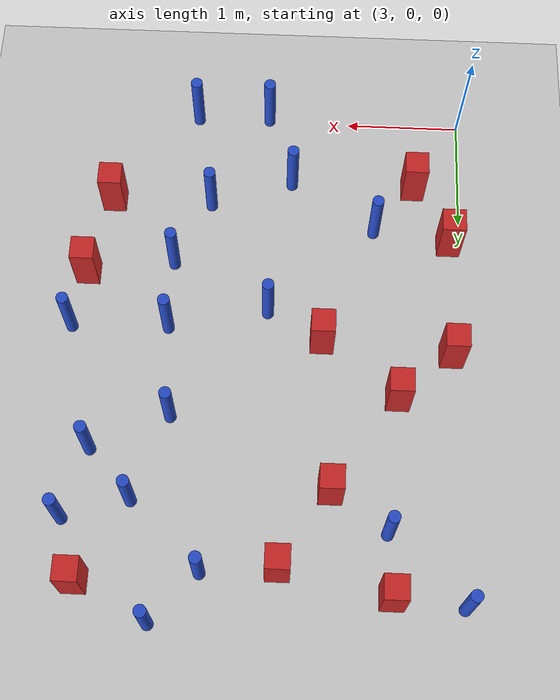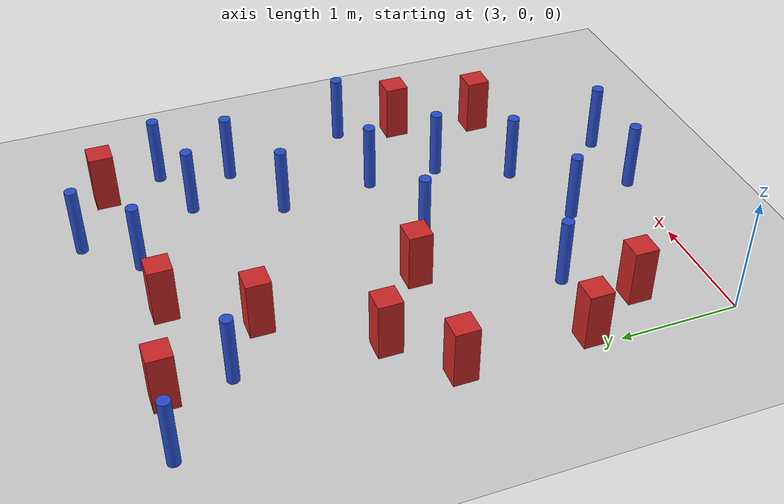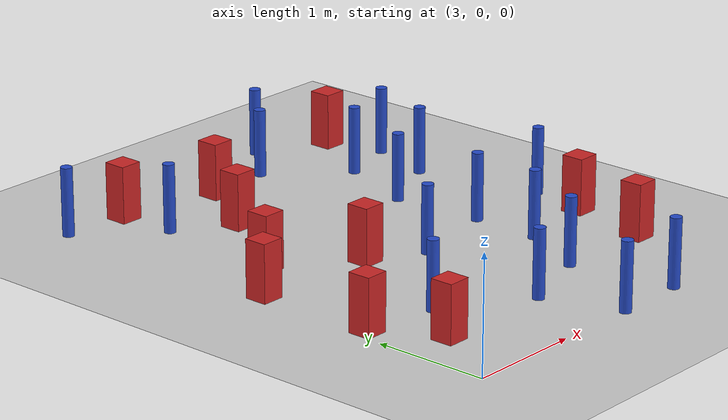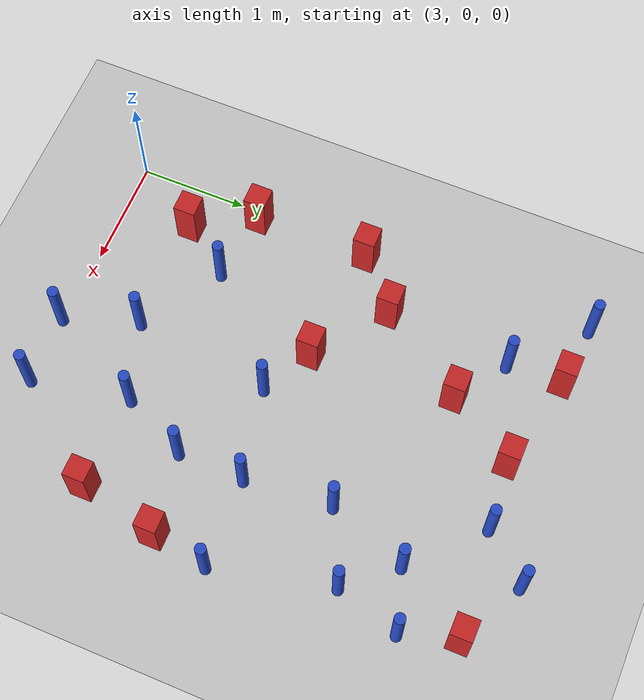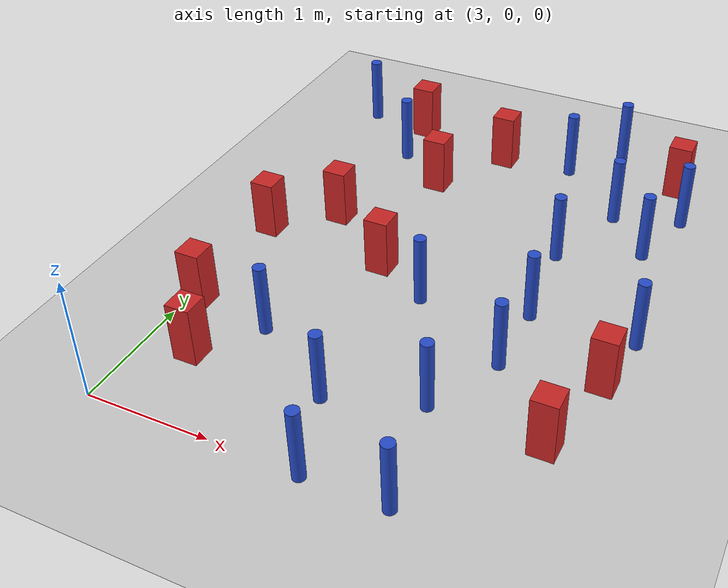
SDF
<sdf version="1.6">
 <world name="default">
  <model name="ground_plane">
   <static>1</static>
   <link name="link">
    <collision name="collision">
     <geometry><plane><normal>0 0 1</normal><size>100 100</size></plane></geometry>
     <surface><friction><ode><mu>100</mu><mu2>50</mu2></ode></friction></surface>
    </collision>
    <visual name="visual">
     <cast_shadows>0</cast_shadows>
     <geometry><plane><normal>0 0 1</normal><size>100 100</size></plane></geometry>
     <material>
      <ambient>1.0 1.0 1.0 1.0</ambient>
      <diffuse>0.8 0.8 0.8 1.0</diffuse>
      <specular>0.01 0.01 0.01 1.000000</specular>
     </material>
    </visual>
   </link>
  </model>
  <model name="pole_obstacle21">
   <static>true</static>
   <pose>5.4323473388 2.91390937879 2.88873142074e-08 -9.90536690245e-09 4.6021994898e-07 -1.20965994966e-07</pose>
   <link name="link">
    <pose>0 0 0.3 0 -0 0</pose>
    <inertial>
     <mass>1</mass>
     <inertia><ixx>0.145833</ixx><ixy>0</ixy><ixz>0</ixz><iyy>0.145833</iyy><iyz>0</iyz><izz>0.125</izz></inertia>
    </inertial>
    <collision name="collision">
     <geometry><cylinder><radius>0.05</radius><length>.6</length></cylinder></geometry>
    </collision>
    <visual name="visual">
     <geometry><cylinder><radius>0.05</radius><length>.6</length></cylinder></geometry>
     <material>
      <script><name>Gazebo/Blue</name><uri>file://media/materials/scripts/gazebo.material</uri></script>
     </material>
    </visual>
   </link>
  </model>
  <model name="pole_obstacle24">
   <static>true</static>
   <pose>5.50613115673 2.10906915194 2.88873142074e-08 -9.90536690245e-09 4.6021994898e-07 -1.20965994966e-07</pose>
   <link name="link">
    <pose>0 0 0.3 0 -0 0</pose>
    <inertial>
     <mass>1</mass>
     <inertia><ixx>0.145833</ixx><ixy>0</ixy><ixz>0</ixz><iyy>0.145833</iyy><iyz>0</iyz><izz>0.125</izz></inertia>
    </inertial>
    <collision name="collision">
     <geometry><cylinder><radius>0.05</radius><length>.6</length></cylinder></geometry>
    </collision>
    <visual name="visual">
     <geometry><cylinder><radius>0.05</radius><length>.6</length></cylinder></geometry>
     <material>
      <script><name>Gazebo/Blue</name><uri>file://media/materials/scripts/gazebo.material</uri></script>
     </material>
    </visual>
   </link>
  </model>
  <model name="square_post_obstacle19">
   <static>true</static>
   <pose>3.08959006721 2.27627172951 8.22691968438e-08 7.2212513382e-06 -7.54495500217e-07 2.29674213826e-05</pose>
   <link name="link">
    <pose>0 0 0.25 0 -0 0</pose>
    <inertial>
     <mass>100</mass>
     <inertia>
      <ixx>0.166667</ixx>
      <ixy>0</ixy>
      <ixz>0</ixz>
      <iyy>0.166667</iyy>
      <iyz>0</iyz>
      <izz>0.166667</izz>
     </inertia>
    </inertial>
    <collision name="collision"><geometry><box><size>.2 .2 .5</size></box></geometry></collision>
    <visual name="visual">
     <geometry><box><size>.2 .2 .5</size></box></geometry>
     <material>
      <script><name>Gazebo/Red</name><uri>file://media/materials/scripts/gazebo.material</uri></script>
     </material>
    </visual>
   </link>
  </model>
  <model name="pole_obstacle29">
   <static>true</static>
   <pose>5.48616518932 4.61730662018 2.88873142074e-08 -9.90536690842e-09 4.60219948965e-07 -1.20965994976e-07</pose>
   <link name="link">
    <pose>0 0 0.3 0 -0 0</pose>
    <inertial>
     <mass>1</mass>
     <inertia><ixx>0.145833</ixx><ixy>0</ixy><ixz>0</ixz><iyy>0.145833</iyy><iyz>0</iyz><izz>0.125</izz></inertia>
    </inertial>
    <collision name="collision">
     <geometry><cylinder><radius>0.05</radius><length>.6</length></cylinder></geometry>
    </collision>
    <visual name="visual">
     <geometry><cylinder><radius>0.05</radius><length>.6</length></cylinder></geometry>
     <material>
      <script><name>Gazebo/Blue</name><uri>file://media/materials/scripts/gazebo.material</uri></script>
     </material>
    </visual>
   </link>
  </model>
  <model name="pole_obstacle41">
   <static>true</static>
   <pose>3.62100782637 3.83456961408 2.88873142074e-08 -9.90536690232e-09 4.6021994898e-07 -1.20965994968e-07</pose>
   <link name="link">
    <pose>0 0 0.3 0 -0 0</pose>
    <inertial>
     <mass>1</mass>
     <inertia><ixx>0.145833</ixx><ixy>0</ixy><ixz>0</ixz><iyy>0.145833</iyy><iyz>0</iyz><izz>0.125</izz></inertia>
    </inertial>
    <collision name="collision">
     <geometry><cylinder><radius>0.05</radius><length>.6</length></cylinder></geometry>
    </collision>
    <visual name="visual">
     <geometry><cylinder><radius>0.05</radius><length>.6</length></cylinder></geometry>
     <material>
      <script><name>Gazebo/Blue</name><uri>file://media/materials/scripts/gazebo.material</uri></script>
     </material>
    </visual>
   </link>
  </model>
  <model name="pole_obstacle68">
   <static>true</static>
   <pose>4.49448221479 0.657118531085 2.88873142074e-08 -9.90536689837e-09 4.60219948989e-07 -1.2096599496e-07</pose>
   <link name="link">
    <pose>0 0 0.3 0 -0 0</pose>
    <inertial>
     <mass>1</mass>
     <inertia><ixx>0.145833</ixx><ixy>0</ixy><ixz>0</ixz><iyy>0.145833</iyy><iyz>0</iyz><izz>0.125</izz></inertia>
    </inertial>
    <collision name="collision">
     <geometry><cylinder><radius>0.05</radius><length>.6</length></cylinder></geometry>
    </collision>
    <visual name="visual">
     <geometry><cylinder><radius>0.05</radius><length>.6</length></cylinder></geometry>
     <material>
      <script><name>Gazebo/Blue</name><uri>file://media/materials/scripts/gazebo.material</uri></script>
     </material>
    </visual>
   </link>
  </model>
  <model name="pole_obstacle69">
   <static>true</static>
   <pose>5.49588521843 1.49594933596 2.88873142074e-08 -9.90536689445e-09 4.60219948999e-07 -1.20965994956e-07</pose>
   <link name="link">
    <pose>0 0 0.3 0 -0 0</pose>
    <inertial>
     <mass>1</mass>
     <inertia><ixx>0.145833</ixx><ixy>0</ixy><ixz>0</ixz><iyy>0.145833</iyy><iyz>0</iyz><izz>0.125</izz></inertia>
    </inertial>
    <collision name="collision">
     <geometry><cylinder><radius>0.05</radius><length>.6</length></cylinder></geometry>
    </collision>
    <visual name="visual">
     <geometry><cylinder><radius>0.05</radius><length>.6</length></cylinder></geometry>
     <material>
      <script><name>Gazebo/Blue</name><uri>file://media/materials/scripts/gazebo.material</uri></script>
     </material>
    </visual>
   </link>
  </model>
  <model name="pole_obstacle72">
   <static>true</static>
   <pose>4.65940416583 1.93553378094 2.88873142074e-08 -9.90536689445e-09 4.60219948999e-07 -1.20965994956e-07</pose>
   <link name="link">
    <pose>0 0 0.3 0 -0 0</pose>
    <inertial>
     <mass>1</mass>
     <inertia><ixx>0.145833</ixx><ixy>0</ixy><ixz>0</ixz><iyy>0.145833</iyy><iyz>0</iyz><izz>0.125</izz></inertia>
    </inertial>
    <collision name="collision">
     <geometry><cylinder><radius>0.05</radius><length>.6</length></cylinder></geometry>
    </collision>
    <visual name="visual">
     <geometry><cylinder><radius>0.05</radius><length>.6</length></cylinder></geometry>
     <material>
      <script><name>Gazebo/Blue</name><uri>file://media/materials/scripts/gazebo.material</uri></script>
     </material>
    </visual>
   </link>
  </model>
  <model name="square_post_obstacle68">
   <static>true</static>
   <pose>3.54445836867 2.68189977755 8.22691968438e-08 7.2212513382e-06 -7.54495500217e-07 2.29674213826e-05</pose>
   <link name="link">
    <pose>0 0 0.25 0 -0 0</pose>
    <inertial>
     <mass>100</mass>
     <inertia>
      <ixx>0.166667</ixx>
      <ixy>0</ixy>
      <ixz>0</ixz>
      <iyy>0.166667</iyy>
      <iyz>0</iyz>
      <izz>0.166667</izz>
     </inertia>
    </inertial>
    <collision name="collision"><geometry><box><size>.2 .2 .5</size></box></geometry></collision>
    <visual name="visual">
     <geometry><box><size>.2 .2 .5</size></box></geometry>
     <material>
      <script><name>Gazebo/Red</name><uri>file://media/materials/scripts/gazebo.material</uri></script>
     </material>
    </visual>
   </link>
  </model>
  <model name="pole_obstacle85">
   <static>true</static>
   <pose>5.37336520467 -0.0040371756682 2.88873142074e-08 -9.90536689125e-09 4.60219949006e-07 -1.20965994951e-07</pose>
   <link name="link">
    <pose>0 0 0.3 0 -0 0</pose>
    <inertial>
     <mass>1</mass>
     <inertia><ixx>0.145833</ixx><ixy>0</ixy><ixz>0</ixz><iyy>0.145833</iyy><iyz>0</iyz><izz>0.125</izz></inertia>
    </inertial>
    <collision name="collision">
     <geometry><cylinder><radius>0.05</radius><length>.6</length></cylinder></geometry>
    </collision>
    <visual name="visual">
     <geometry><cylinder><radius>0.05</radius><length>.6</length></cylinder></geometry>
     <material>
      <script><name>Gazebo/Blue</name><uri>file://media/materials/scripts/gazebo.material</uri></script>
     </material>
    </visual>
   </link>
  </model>
  <model name="square_post_obstacle73">
   <static>true</static>
   <pose>4.49235609507 4.14879047352 8.22691968438e-08 7.2212513382e-06 -7.54495500217e-07 2.29674213826e-05</pose>
   <link name="link">
    <pose>0 0 0.25 0 -0 0</pose>
    <inertial>
     <mass>100</mass>
     <inertia>
      <ixx>0.166667</ixx>
      <ixy>0</ixy>
      <ixz>0</ixz>
      <iyy>0.166667</iyy>
      <iyz>0</iyz>
      <izz>0.166667</izz>
     </inertia>
    </inertial>
    <collision name="collision"><geometry><box><size>.2 .2 .5</size></box></geometry></collision>
    <visual name="visual">
     <geometry><box><size>.2 .2 .5</size></box></geometry>
     <material>
      <script><name>Gazebo/Red</name><uri>file://media/materials/scripts/gazebo.material</uri></script>
     </material>
    </visual>
   </link>
  </model>
  <model name="square_post_obstacle74">
   <static>true</static>
   <pose>3.5902777816 4.34128332955 8.22691968438e-08 7.2212513382e-06 -7.54495500217e-07 2.29674213826e-05</pose>
   <link name="link">
    <pose>0 0 0.25 0 -0 0</pose>
    <inertial>
     <mass>100</mass>
     <inertia>
      <ixx>0.166667</ixx>
      <ixy>0</ixy>
      <ixz>0</ixz>
      <iyy>0.166667</iyy>
      <iyz>0</iyz>
      <izz>0.166667</izz>
     </inertia>
    </inertial>
    <collision name="collision"><geometry><box><size>.2 .2 .5</size></box></geometry></collision>
    <visual name="visual">
     <geometry><box><size>.2 .2 .5</size></box></geometry>
     <material>
      <script><name>Gazebo/Red</name><uri>file://media/materials/scripts/gazebo.material</uri></script>
     </material>
    </visual>
   </link>
  </model>
  <model name="square_post_obstacle76">
   <static>true</static>
   <pose>6.08599478966 4.30738144883 8.22691968438e-08 7.2212513382e-06 -7.54495500217e-07 2.29674213826e-05</pose>
   <link name="link">
    <pose>0 0 0.25 0 -0 0</pose>
    <inertial>
     <mass>100</mass>
     <inertia>
      <ixx>0.166667</ixx>
      <ixy>0</ixy>
      <ixz>0</ixz>
      <iyy>0.166667</iyy>
      <iyz>0</iyz>
      <izz>0.166667</izz>
     </inertia>
    </inertial>
    <collision name="collision"><geometry><box><size>.2 .2 .5</size></box></geometry></collision>
    <visual name="visual">
     <geometry><box><size>.2 .2 .5</size></box></geometry>
     <material>
      <script><name>Gazebo/Red</name><uri>file://media/materials/scripts/gazebo.material</uri></script>
     </material>
    </visual>
   </link>
  </model>
  <model name="square_post_obstacle78">
   <static>true</static>
   <pose>3.41412352791 0.66582962304 8.22691968438e-08 7.2212513382e-06 -7.54495500217e-07 2.29674213826e-05</pose>
   <link name="link">
    <pose>0 0 0.25 0 -0 0</pose>
    <inertial>
     <mass>100</mass>
     <inertia>
      <ixx>0.166667</ixx>
      <ixy>0</ixy>
      <ixz>0</ixz>
      <iyy>0.166667</iyy>
      <iyz>0</iyz>
      <izz>0.166667</izz>
     </inertia>
    </inertial>
    <collision name="collision"><geometry><box><size>.2 .2 .5</size></box></geometry></collision>
    <visual name="visual">
     <geometry><box><size>.2 .2 .5</size></box></geometry>
     <material>
      <script><name>Gazebo/Red</name><uri>file://media/materials/scripts/gazebo.material</uri></script>
     </material>
    </visual>
   </link>
  </model>
  <model name="pole_obstacle116">
   <static>true</static>
   <pose>5.10788813895 4.206130297 2.88873142074e-08 -9.90536690842e-09 4.60219948965e-07 -1.20965994976e-07</pose>
   <link name="link">
    <pose>0 0 0.3 0 -0 0</pose>
    <inertial>
     <mass>1</mass>
     <inertia><ixx>0.145833</ixx><ixy>0</ixy><ixz>0</ixz><iyy>0.145833</iyy><iyz>0</iyz><izz>0.125</izz></inertia>
    </inertial>
    <collision name="collision">
     <geometry><cylinder><radius>0.05</radius><length>.6</length></cylinder></geometry>
    </collision>
    <visual name="visual">
     <geometry><cylinder><radius>0.05</radius><length>.6</length></cylinder></geometry>
     <material>
      <script><name>Gazebo/Blue</name><uri>file://media/materials/scripts/gazebo.material</uri></script>
     </material>
    </visual>
   </link>
  </model>
  <model name="square_post_obstacle127">
   <static>true</static>
   <pose>6.23954122205 1.61253664526 8.22691968438e-08 7.2212513382e-06 -7.54495500217e-07 2.29674213826e-05</pose>
   <link name="link">
    <pose>0 0 0.25 0 -0 0</pose>
    <inertial>
     <mass>100</mass>
     <inertia>
      <ixx>0.166667</ixx>
      <ixy>0</ixy>
      <ixz>0</ixz>
      <iyy>0.166667</iyy>
      <iyz>0</iyz>
      <izz>0.166667</izz>
     </inertia>
    </inertial>
    <collision name="collision"><geometry><box><size>.2 .2 .5</size></box></geometry></collision>
    <visual name="visual">
     <geometry><box><size>.2 .2 .5</size></box></geometry>
     <material>
      <script><name>Gazebo/Red</name><uri>file://media/materials/scripts/gazebo.material</uri></script>
     </material>
    </visual>
   </link>
  </model>
  <model name="pole_obstacle135">
   <static>true</static>
   <pose>4.72465610695 -0.0166406421167 2.88873142074e-08 -9.90536690014e-09 4.60219948985e-07 -1.20965994965e-07</pose>
   <link name="link">
    <pose>0 0 0.3 0 -0 0</pose>
    <inertial>
     <mass>1</mass>
     <inertia><ixx>0.145833</ixx><ixy>0</ixy><ixz>0</ixz><iyy>0.145833</iyy><iyz>0</iyz><izz>0.125</izz></inertia>
    </inertial>
    <collision name="collision">
     <geometry><cylinder><radius>0.05</radius><length>.6</length></cylinder></geometry>
    </collision>
    <visual name="visual">
     <geometry><cylinder><radius>0.05</radius><length>.6</length></cylinder></geometry>
     <material>
      <script><name>Gazebo/Blue</name><uri>file://media/materials/scripts/gazebo.material</uri></script>
     </material>
    </visual>
   </link>
  </model>
  <model name="pole_obstacle146">
   <static>true</static>
   <pose>6.3348643279 2.12744997515 2.88873142074e-08 -9.90536690245e-09 4.6021994898e-07 -1.20965994966e-07</pose>
   <link name="link">
    <pose>0 0 0.3 0 -0 0</pose>
    <inertial>
     <mass>1</mass>
     <inertia><ixx>0.145833</ixx><ixy>0</ixy><ixz>0</ixz><iyy>0.145833</iyy><iyz>0</iyz><izz>0.125</izz></inertia>
    </inertial>
    <collision name="collision">
     <geometry><cylinder><radius>0.05</radius><length>.6</length></cylinder></geometry>
    </collision>
    <visual name="visual">
     <geometry><cylinder><radius>0.05</radius><length>.6</length></cylinder></geometry>
     <material>
      <script><name>Gazebo/Blue</name><uri>file://media/materials/scripts/gazebo.material</uri></script>
     </material>
    </visual>
   </link>
  </model>
  <model name="square_post_obstacle141">
   <static>true</static>
   <pose>4.09012657928 3.50755656646 8.22691968438e-08 7.2212513382e-06 -7.54495500217e-07 2.29674213826e-05</pose>
   <link name="link">
    <pose>0 0 0.25 0 -0 0</pose>
    <inertial>
     <mass>100</mass>
     <inertia>
      <ixx>0.166667</ixx>
      <ixy>0</ixy>
      <ixz>0</ixz>
      <iyy>0.166667</iyy>
      <iyz>0</iyz>
      <izz>0.166667</izz>
     </inertia>
    </inertial>
    <collision name="collision"><geometry><box><size>.2 .2 .5</size></box></geometry></collision>
    <visual name="visual">
     <geometry><box><size>.2 .2 .5</size></box></geometry>
     <material>
      <script><name>Gazebo/Red</name><uri>file://media/materials/scripts/gazebo.material</uri></script>
     </material>
    </visual>
   </link>
  </model>
  <model name="pole_obstacle153">
   <static>true</static>
   <pose>5.2049662826 0.899762231958 2.88873142074e-08 -9.90536689837e-09 4.60219948989e-07 -1.2096599496e-07</pose>
   <link name="link">
    <pose>0 0 0.3 0 -0 0</pose>
    <inertial>
     <mass>1</mass>
     <inertia><ixx>0.145833</ixx><ixy>0</ixy><ixz>0</ixz><iyy>0.145833</iyy><iyz>0</iyz><izz>0.125</izz></inertia>
    </inertial>
    <collision name="collision">
     <geometry><cylinder><radius>0.05</radius><length>.6</length></cylinder></geometry>
    </collision>
    <visual name="visual">
     <geometry><cylinder><radius>0.05</radius><length>.6</length></cylinder></geometry>
     <material>
      <script><name>Gazebo/Blue</name><uri>file://media/materials/scripts/gazebo.material</uri></script>
     </material>
    </visual>
   </link>
  </model>
  <model name="pole_obstacle156">
   <static>true</static>
   <pose>6.07250073608 3.22166313513 2.88873142074e-08 -9.90536690245e-09 4.6021994898e-07 -1.20965994966e-07</pose>
   <link name="link">
    <pose>0 0 0.3 0 -0 0</pose>
    <inertial>
     <mass>1</mass>
     <inertia><ixx>0.145833</ixx><ixy>0</ixy><ixz>0</ixz><iyy>0.145833</iyy><iyz>0</iyz><izz>0.125</izz></inertia>
    </inertial>
    <collision name="collision">
     <geometry><cylinder><radius>0.05</radius><length>.6</length></cylinder></geometry>
    </collision>
    <visual name="visual">
     <geometry><cylinder><radius>0.05</radius><length>.6</length></cylinder></geometry>
     <material>
      <script><name>Gazebo/Blue</name><uri>file://media/materials/scripts/gazebo.material</uri></script>
     </material>
    </visual>
   </link>
  </model>
  <model name="square_post_obstacle165">
   <static>true</static>
   <pose>6.0728443036 0.881981803012 8.22691968438e-08 7.2212513382e-06 -7.54495500217e-07 2.29674213826e-05</pose>
   <link name="link">
    <pose>0 0 0.25 0 -0 0</pose>
    <inertial>
     <mass>100</mass>
     <inertia>
      <ixx>0.166667</ixx>
      <ixy>0</ixy>
      <ixz>0</ixz>
      <iyy>0.166667</iyy>
      <iyz>0</iyz>
      <izz>0.166667</izz>
     </inertia>
    </inertial>
    <collision name="collision"><geometry><box><size>.2 .2 .5</size></box></geometry></collision>
    <visual name="visual">
     <geometry><box><size>.2 .2 .5</size></box></geometry>
     <material>
      <script><name>Gazebo/Red</name><uri>file://media/materials/scripts/gazebo.material</uri></script>
     </material>
    </visual>
   </link>
  </model>
  <model name="square_post_obstacle170">
   <static>true</static>
   <pose>3.10186064378 1.21540554711 8.22691968438e-08 7.2212513382e-06 -7.54495500217e-07 2.29674213826e-05</pose>
   <link name="link">
    <pose>0 0 0.25 0 -0 0</pose>
    <inertial>
     <mass>100</mass>
     <inertia>
      <ixx>0.166667</ixx>
      <ixy>0</ixy>
      <ixz>0</ixz>
      <iyy>0.166667</iyy>
      <iyz>0</iyz>
      <izz>0.166667</izz>
     </inertia>
    </inertial>
    <collision name="collision"><geometry><box><size>.2 .2 .5</size></box></geometry></collision>
    <visual name="visual">
     <geometry><box><size>.2 .2 .5</size></box></geometry>
     <material>
      <script><name>Gazebo/Red</name><uri>file://media/materials/scripts/gazebo.material</uri></script>
     </material>
    </visual>
   </link>
  </model>
  <model name="pole_obstacle171">
   <static>true</static>
   <pose>6.24675373381 3.81047623465 2.88873142074e-08 -9.90536690245e-09 4.6021994898e-07 -1.20965994966e-07</pose>
   <link name="link">
    <pose>0 0 0.3 0 -0 0</pose>
    <inertial>
     <mass>1</mass>
     <inertia><ixx>0.145833</ixx><ixy>0</ixy><ixz>0</ixz><iyy>0.145833</iyy><iyz>0</iyz><izz>0.125</izz></inertia>
    </inertial>
    <collision name="collision">
     <geometry><cylinder><radius>0.05</radius><length>.6</length></cylinder></geometry>
    </collision>
    <visual name="visual">
     <geometry><cylinder><radius>0.05</radius><length>.6</length></cylinder></geometry>
     <material>
      <script><name>Gazebo/Blue</name><uri>file://media/materials/scripts/gazebo.material</uri></script>
     </material>
    </visual>
   </link>
  </model>
  <model name="pole_obstacle173">
   <static>true</static>
   <pose>3.7587447854 1.11830711416 2.88873142074e-08 -9.90536689395e-09 4.60219949e-07 -1.20965994953e-07</pose>
   <link name="link">
    <pose>0 0 0.3 0 -0 0</pose>
    <inertial>
     <mass>1</mass>
     <inertia><ixx>0.145833</ixx><ixy>0</ixy><ixz>0</ixz><iyy>0.145833</iyy><iyz>0</iyz><izz>0.125</izz></inertia>
    </inertial>
    <collision name="collision">
     <geometry><cylinder><radius>0.05</radius><length>.6</length></cylinder></geometry>
    </collision>
    <visual name="visual">
     <geometry><cylinder><radius>0.05</radius><length>.6</length></cylinder></geometry>
     <material>
      <script><name>Gazebo/Blue</name><uri>file://media/materials/scripts/gazebo.material</uri></script>
     </material>
    </visual>
   </link>
  </model>
  <model name="pole_obstacle180">
   <static>true</static>
   <pose>3.0128306097 4.40417158484 2.88873142074e-08 -9.90536689859e-09 4.60219948989e-07 -1.20965994961e-07</pose>
   <link name="link">
    <pose>0 0 0.3 0 -0 0</pose>
    <inertial>
     <mass>1</mass>
     <inertia><ixx>0.145833</ixx><ixy>0</ixy><ixz>0</ixz><iyy>0.145833</iyy><iyz>0</iyz><izz>0.125</izz></inertia>
    </inertial>
    <collision name="collision">
     <geometry><cylinder><radius>0.05</radius><length>.6</length></cylinder></geometry>
    </collision>
    <visual name="visual">
     <geometry><cylinder><radius>0.05</radius><length>.6</length></cylinder></geometry>
     <material>
      <script><name>Gazebo/Blue</name><uri>file://media/materials/scripts/gazebo.material</uri></script>
     </material>
    </visual>
   </link>
  </model>
  <model name="pole_obstacle186">
   <static>true</static>
   <pose>5.70025757428 3.64272264284 2.88873142074e-08 -9.90536690245e-09 4.6021994898e-07 -1.20965994966e-07</pose>
   <link name="link">
    <pose>0 0 0.3 0 -0 0</pose>
    <inertial>
     <mass>1</mass>
     <inertia><ixx>0.145833</ixx><ixy>0</ixy><ixz>0</ixz><iyy>0.145833</iyy><iyz>0</iyz><izz>0.125</izz></inertia>
    </inertial>
    <collision name="collision">
     <geometry><cylinder><radius>0.05</radius><length>.6</length></cylinder></geometry>
    </collision>
    <visual name="visual">
     <geometry><cylinder><radius>0.05</radius><length>.6</length></cylinder></geometry>
     <material>
      <script><name>Gazebo/Blue</name><uri>file://media/materials/scripts/gazebo.material</uri></script>
     </material>
    </visual>
   </link>
  </model>
  <model name="square_post_obstacle205">
   <static>true</static>
   <pose>4.19122507833 2.19156759017 8.22691968438e-08 7.2212513382e-06 -7.54495500217e-07 2.29674213826e-05</pose>
   <link name="link">
    <pose>0 0 0.25 0 -0 0</pose>
    <inertial>
     <mass>100</mass>
     <inertia>
      <ixx>0.166667</ixx>
      <ixy>0</ixy>
      <ixz>0</ixz>
      <iyy>0.166667</iyy>
      <iyz>0</iyz>
      <izz>0.166667</izz>
     </inertia>
    </inertial>
    <collision name="collision"><geometry><box><size>.2 .2 .5</size></box></geometry></collision>
    <visual name="visual">
     <geometry><box><size>.2 .2 .5</size></box></geometry>
     <material>
      <script><name>Gazebo/Red</name><uri>file://media/materials/scripts/gazebo.material</uri></script>
     </material>
    </visual>
   </link>
  </model>
 </world>
</sdf>
